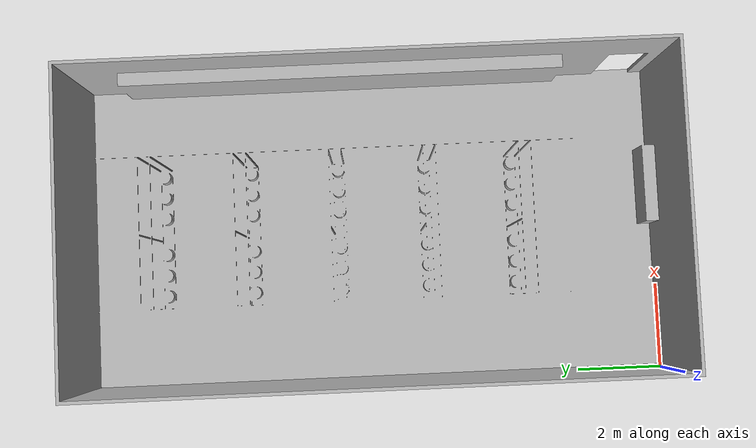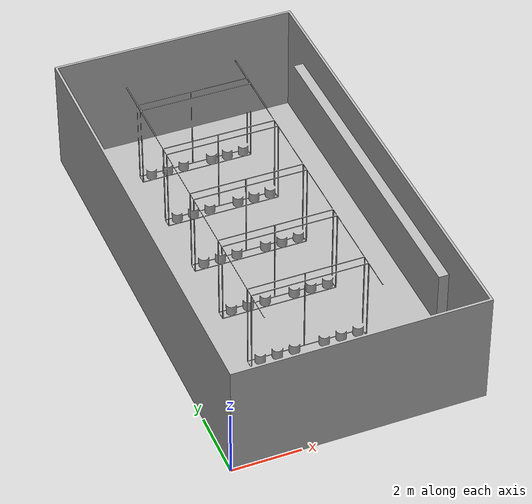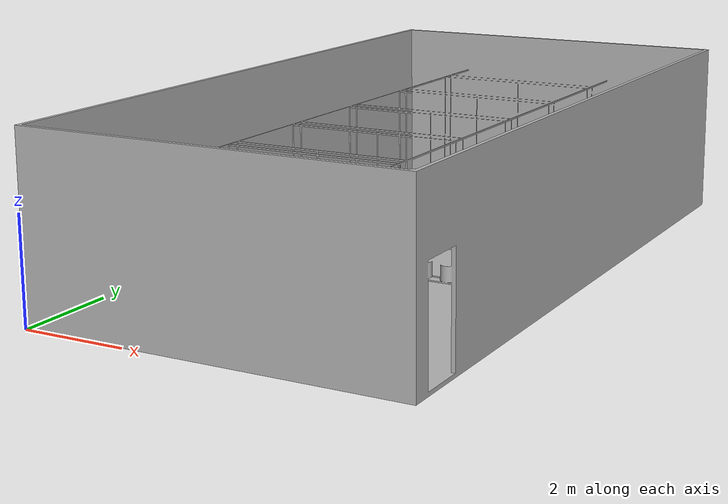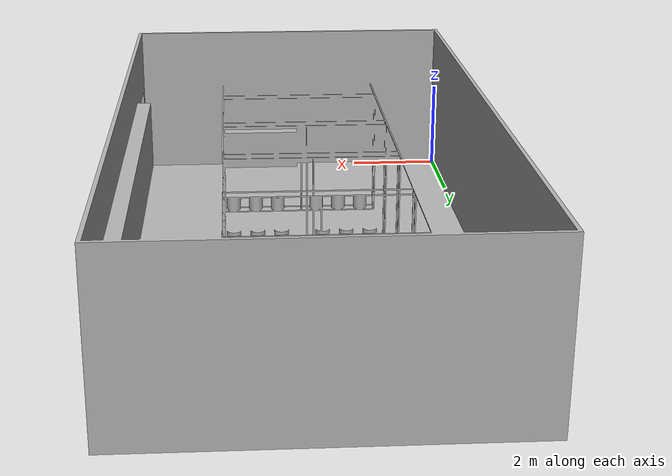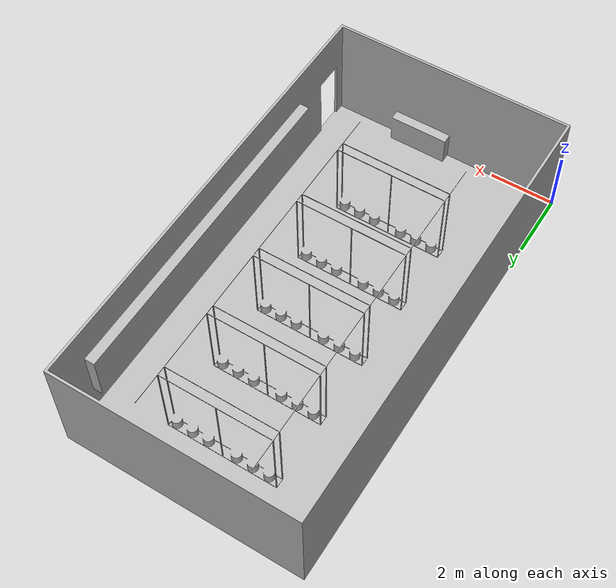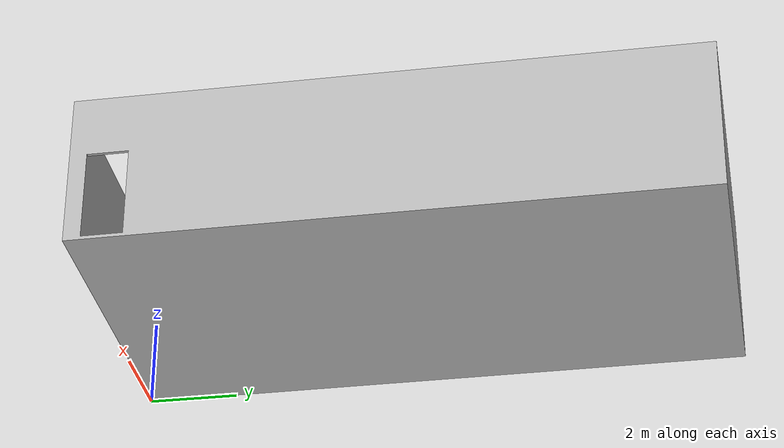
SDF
<?xml version="1.0"?>
<sdf version="1.5">
    <model name="greenhouse-treeless">
      <pose>7.35 0 0  0 0 3.141593</pose>
      <static>true</static>
      <link name="body">
        <visual name="visual">
          <geometry>
            <mesh><uri>model://greenhouse-treeless/meshes/greenhouse-treeless.dae</uri></mesh>
          </geometry>
        </visual>
        <collision name='collision'>
          <geometry>
            <mesh><uri>model://greenhouse-treeless/meshes/greenhouse-treeless.dae</uri></mesh>
          </geometry>
        </collision>
      </link>
    </model>
</sdf>
